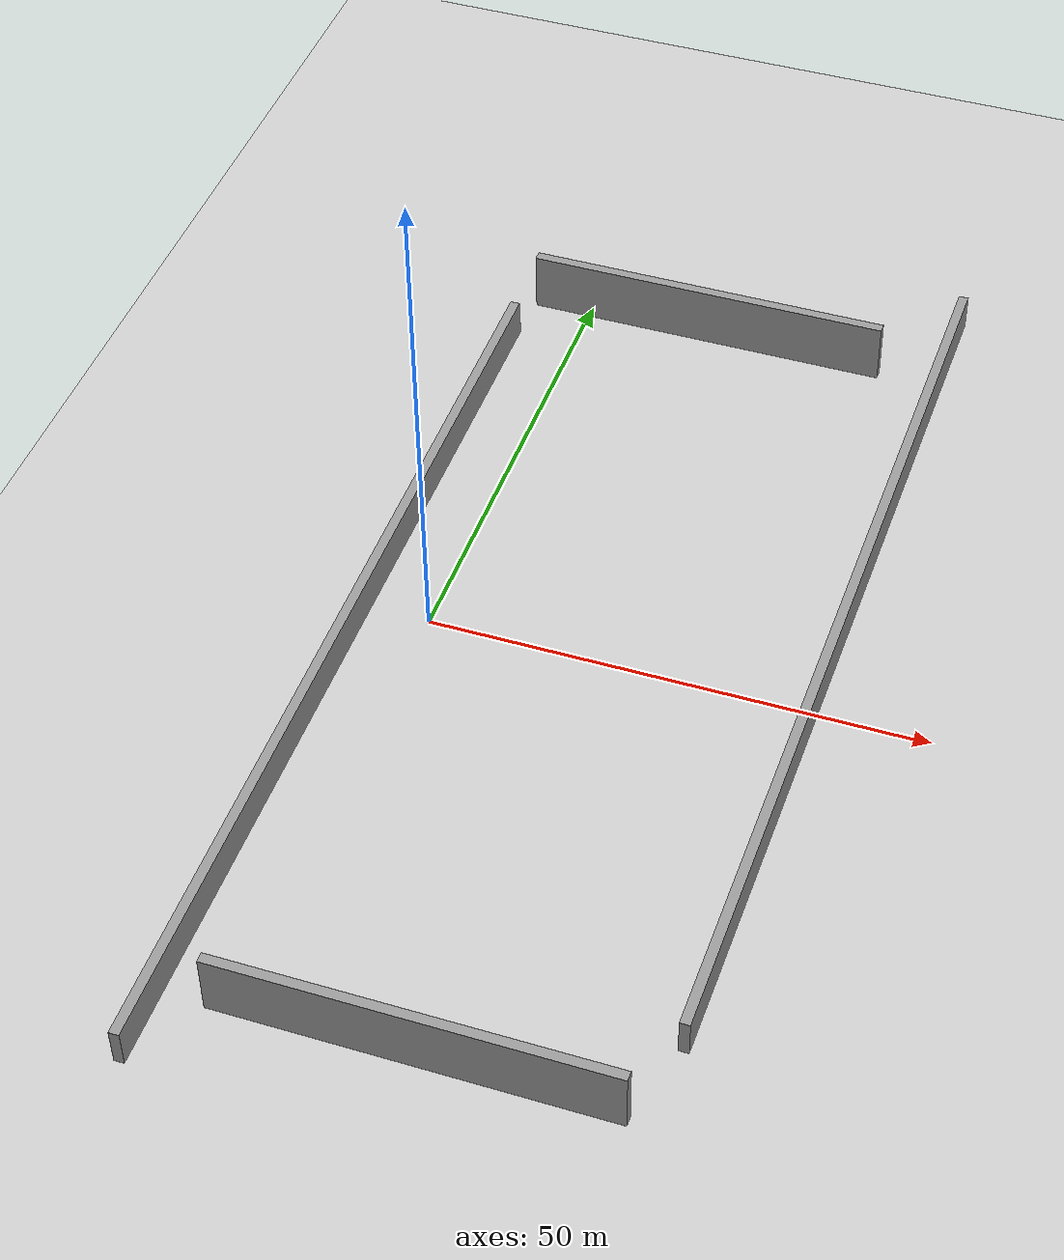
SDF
<sdf version="1.7">
 <world name="default">
  <light name="sun" type="directional">
   <pose>0 0 10 0 -0 0</pose>
   <diffuse>0.8 0.8 0.8 1</diffuse>
   <specular>0.2 0.2 0.2 1</specular>
   <attenuation>
    <range>1000</range>
    <constant>0.9</constant>
    <linear>0.01</linear>
    <quadratic>0.001</quadratic>
   </attenuation>
   <direction>-0.5 0.1 -0.9</direction>
   <spot><inner_angle>0</inner_angle><outer_angle>0</outer_angle><falloff>0</falloff></spot>
  </light>
  <model name="ground_plane">
   <static>1</static>
   <link name="link">
    <collision name="collision">
     <geometry><plane><normal>0 0 1</normal><size>100 100</size></plane></geometry>
     <surface>
      <contact><collide_bitmask>65535</collide_bitmask></contact>
      <friction><ode><mu>100</mu><mu2>50</mu2></ode></friction>
     </surface>
    </collision>
    <visual name="visual">
     <cast_shadows>0</cast_shadows>
     <geometry><plane><normal>0 0 1</normal><size>100 100</size></plane></geometry>
     <material>
      <script><uri>file://media/materials/scripts/gazebo.material</uri><name>Gazebo/Grey</name></script>
     </material>
    </visual>
   </link>
  </model>
  <gravity>0 0 -9.8</gravity>
  <magnetic_field>6e-06 2.3e-05 -4.2e-05</magnetic_field>
  <atmosphere type="adiabatic"/>
  <physics type="ode">
   <max_step_size>0.001</max_step_size>
   <real_time_factor>1</real_time_factor>
   <real_time_update_rate>1000</real_time_update_rate>
  </physics>
  <scene><ambient>0.4 0.4 0.4 1</ambient><background>0.7 0.7 0.7 1</background><shadows>1</shadows></scene>
  <spherical_coordinates>
   <surface_model>EARTH_WGS84</surface_model>
   <latitude_deg>0</latitude_deg>
   <longitude_deg>0</longitude_deg>
   <elevation>0</elevation>
   <heading_deg>0</heading_deg>
  </spherical_coordinates>
  <model name="unit_box">
   <pose>-6.50273 -6.57945 2.0749 -0.001608 -0.006452 0.004372</pose>
   <link name="link">
    <inertial>
     <mass>1</mass>
     <inertia>
      <ixx>0.166667</ixx>
      <ixy>0</ixy>
      <ixz>0</ixz>
      <iyy>0.166667</iyy>
      <iyz>0</iyz>
      <izz>0.166667</izz>
     </inertia>
    </inertial>
    <collision name="collision"><geometry><box><size>1 100.782 3.93221</size></box></geometry></collision>
    <visual name="visual">
     <geometry><box><size>1 100.782 3.93221</size></box></geometry>
     <material>
      <script><name>Gazebo/Grey</name><uri>file://media/materials/scripts/gazebo.material</uri></script>
     </material>
    </visual>
   </link>
  </model>
  <model name="unit_box_clone">
   <pose>38.5038 9.56777 2.02911 -0.001173 0.002868 0.000773</pose>
   <link name="link">
    <inertial>
     <mass>1</mass>
     <inertia>
      <ixx>0.166667</ixx>
      <ixy>0</ixy>
      <ixz>0</ixz>
      <iyy>0.166667</iyy>
      <iyz>0</iyz>
      <izz>0.166667</izz>
     </inertia>
    </inertial>
    <collision name="collision"><geometry><box><size>1 100.782 3.93221</size></box></geometry></collision>
    <visual name="visual">
     <geometry><box><size>1 100.782 3.93221</size></box></geometry>
     <material>
      <script><name>Gazebo/Grey</name><uri>file://media/materials/scripts/gazebo.material</uri></script>
     </material>
    </visual>
   </link>
  </model>
  <model name="unit_box_0">
   <pose>17.4687 -49.4576 4.09248 -1e-05 -0 -0</pose>
   <link name="link">
    <inertial>
     <mass>1</mass>
     <inertia>
      <ixx>0.166667</ixx>
      <ixy>0</ixy>
      <ixz>0</ixz>
      <iyy>0.166667</iyy>
      <iyz>0</iyz>
      <izz>0.166667</izz>
     </inertia>
    </inertial>
    <collision name="collision"><geometry><box><size>37.9963 1 6.40616</size></box></geometry></collision>
    <visual name="visual">
     <geometry><box><size>37.9963 1 6.40616</size></box></geometry>
     <material>
      <script><name>Gazebo/Grey</name><uri>file://media/materials/scripts/gazebo.material</uri></script>
     </material>
    </visual>
   </link>
  </model>
  <model name="unit_box_0_clone">
   <pose>13.2786 48.2147 4.09248 -1e-05 0 0</pose>
   <link name="link">
    <inertial>
     <mass>1</mass>
     <inertia>
      <ixx>0.166667</ixx>
      <ixy>0</ixy>
      <ixz>0</ixz>
      <iyy>0.166667</iyy>
      <iyz>0</iyz>
      <izz>0.166667</izz>
     </inertia>
    </inertial>
    <collision name="collision"><geometry><box><size>37.9963 1 6.40616</size></box></geometry></collision>
    <visual name="visual">
     <geometry><box><size>37.9963 1 6.40616</size></box></geometry>
     <material>
      <script><name>Gazebo/Grey</name><uri>file://media/materials/scripts/gazebo.material</uri></script>
     </material>
    </visual>
   </link>
  </model>
 </world>
</sdf>
